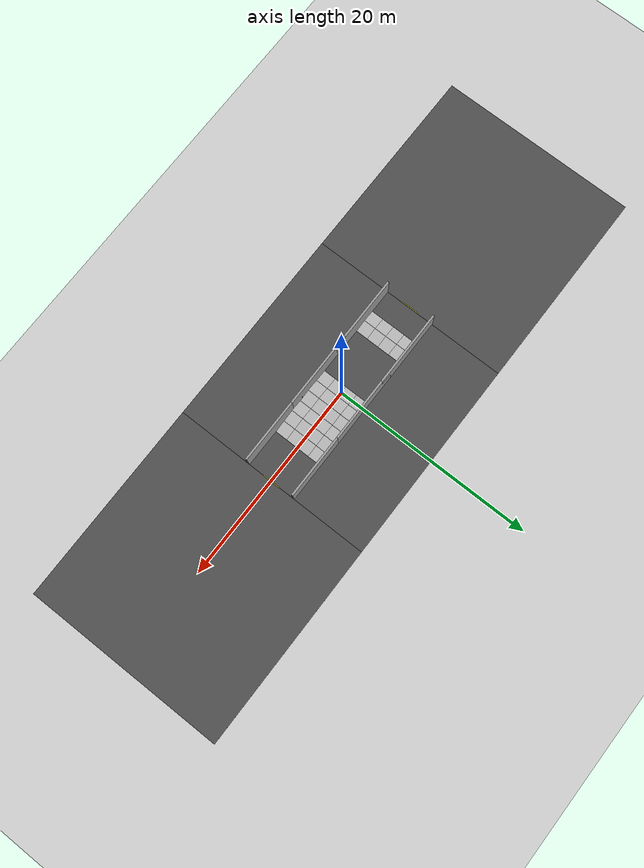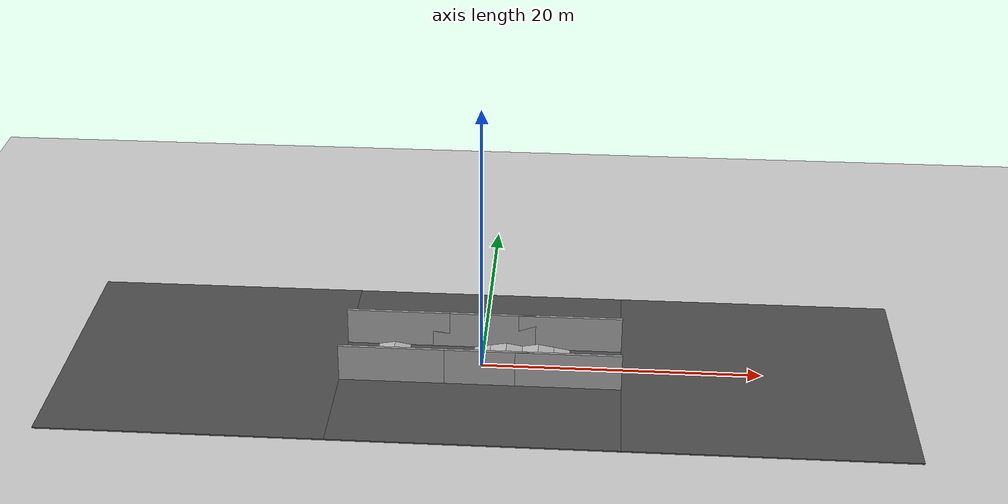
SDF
<sdf version="1.6">
 <world name="default">
  <light name="sun" type="directional">
   <pose>0 0 10 0 -0 0</pose>
   <diffuse>0.8 0.8 0.8 1</diffuse>
   <specular>0.1 0.1 0.1 1</specular>
   <attenuation>
    <range>1000</range>
    <constant>0.9</constant>
    <linear>0.01</linear>
    <quadratic>0.001</quadratic>
   </attenuation>
   <direction>-0.5 0.5 -1</direction>
  </light>
  <model name="ground_plane">
   <static>1</static>
   <link name="link">
    <collision name="collision">
     <geometry><plane><normal>0 0 1</normal><size>100 100</size></plane></geometry>
     <surface><friction><ode><mu>100</mu><mu2>50</mu2></ode></friction></surface>
    </collision>
    <visual name="visual">
     <cast_shadows>0</cast_shadows>
     <geometry><plane><normal>0 0 1</normal><size>100 100</size></plane></geometry>
     <material>
      <script><uri>file://media/materials/scripts/gazebo.material</uri><name>Gazebo/Grey</name></script>
     </material>
    </visual>
   </link>
  </model>
  <gravity>0 0 -9.8</gravity>
  <magnetic_field>6e-06 2.3e-05 -4.2e-05</magnetic_field>
  <atmosphere type="adiabatic"/>
  <physics name="default_physics" default="0" type="ode">
   <max_step_size>0.001</max_step_size>
   <real_time_factor>1</real_time_factor>
   <real_time_update_rate>1000</real_time_update_rate>
  </physics>
  <scene><ambient>0.4 0.4 0.4 1</ambient><background>0.7 0.7 0.7 1</background><shadows>1</shadows></scene>
  <spherical_coordinates>
   <surface_model>EARTH_WGS84</surface_model>
   <latitude_deg>0</latitude_deg>
   <longitude_deg>0</longitude_deg>
   <elevation>0</elevation>
   <heading_deg>0</heading_deg>
  </spherical_coordinates>
  <model name="asphalt_plane">
   <static>1</static>
   <link name="link">
    <collision name="collision"><geometry><box><size>20 20 0.1</size></box></geometry></collision>
    <visual name="visual">
     <cast_shadows>0</cast_shadows>
     <geometry><box><size>20 20 0.1</size></box></geometry>
     <material>
      <script>
       <uri>model://asphalt_plane/materials/scripts</uri>
       <uri>model://asphalt_plane/materials/textures</uri>
       <name>vrc/asphalt</name>
      </script>
     </material>
    </visual>
   </link>
  </model>
  <model name="grey_wall">
   <static>1</static>
   <link name="link">
    <pose>0 0 1.4 0 -0 0</pose>
    <collision name="collision"><geometry><box><size>7.5 0.2 2.8</size></box></geometry></collision>
    <visual name="visual">
     <cast_shadows>0</cast_shadows>
     <geometry><box><size>7.5 0.2 2.8</size></box></geometry>
     <material>
      <script>
       <uri>model://grey_wall/materials/scripts</uri>
       <uri>model://grey_wall/materials/textures</uri>
       <name>vrc/grey_wall</name>
      </script>
     </material>
    </visual>
   </link>
   <pose>-6.25 2.5 0 0 -0 0</pose>
  </model>
  <model name="grey_wall_clone">
   <static>1</static>
   <link name="link">
    <pose>0 0 1.4 0 -0 0</pose>
    <collision name="collision"><geometry><box><size>7.5 0.2 2.8</size></box></geometry></collision>
    <visual name="visual">
     <cast_shadows>0</cast_shadows>
     <geometry><box><size>7.5 0.2 2.8</size></box></geometry>
     <material>
      <script>
       <uri>model://grey_wall/materials/scripts</uri>
       <uri>model://grey_wall/materials/textures</uri>
       <name>vrc/grey_wall</name>
      </script>
     </material>
    </visual>
   </link>
   <pose>0 2.5 0 0 -0 0</pose>
  </model>
  <model name="grey_wall_clone_0">
   <static>1</static>
   <link name="link">
    <pose>0 0 1.4 0 -0 0</pose>
    <collision name="collision"><geometry><box><size>7.5 0.2 2.8</size></box></geometry></collision>
    <visual name="visual">
     <cast_shadows>0</cast_shadows>
     <geometry><box><size>7.5 0.2 2.8</size></box></geometry>
     <material>
      <script>
       <uri>model://grey_wall/materials/scripts</uri>
       <uri>model://grey_wall/materials/textures</uri>
       <name>vrc/grey_wall</name>
      </script>
     </material>
    </visual>
   </link>
   <pose>-6.25 -2.5 0 0 -0 0</pose>
  </model>
  <model name="grey_wall_clone_1">
   <static>1</static>
   <link name="link">
    <pose>0 0 1.4 0 -0 0</pose>
    <collision name="collision"><geometry><box><size>7.5 0.2 2.8</size></box></geometry></collision>
    <visual name="visual">
     <cast_shadows>0</cast_shadows>
     <geometry><box><size>7.5 0.2 2.8</size></box></geometry>
     <material>
      <script>
       <uri>model://grey_wall/materials/scripts</uri>
       <uri>model://grey_wall/materials/textures</uri>
       <name>vrc/grey_wall</name>
      </script>
     </material>
    </visual>
   </link>
   <pose>6.25 2.5 0 0 -0 0</pose>
  </model>
  <model name="grey_wall_clone_2">
   <static>1</static>
   <link name="link">
    <pose>0 0 1.4 0 -0 0</pose>
    <collision name="collision"><geometry><box><size>7.5 0.2 2.8</size></box></geometry></collision>
    <visual name="visual">
     <cast_shadows>0</cast_shadows>
     <geometry><box><size>7.5 0.2 2.8</size></box></geometry>
     <material>
      <script>
       <uri>model://grey_wall/materials/scripts</uri>
       <uri>model://grey_wall/materials/textures</uri>
       <name>vrc/grey_wall</name>
      </script>
     </material>
    </visual>
   </link>
   <pose>0 -2.5 0 0 -0 0</pose>
  </model>
  <model name="grey_wall_clone_3">
   <static>1</static>
   <link name="link">
    <pose>0 0 1.4 0 -0 0</pose>
    <collision name="collision"><geometry><box><size>7.5 0.2 2.8</size></box></geometry></collision>
    <visual name="visual">
     <cast_shadows>0</cast_shadows>
     <geometry><box><size>7.5 0.2 2.8</size></box></geometry>
     <material>
      <script>
       <uri>model://grey_wall/materials/scripts</uri>
       <uri>model://grey_wall/materials/textures</uri>
       <name>vrc/grey_wall</name>
      </script>
     </material>
    </visual>
   </link>
   <pose>6.25 -2.5 0 0 -0 0</pose>
  </model>
  <model name="asphalt_plane_clone">
   <static>1</static>
   <link name="link">
    <collision name="collision"><geometry><box><size>20 20 0.1</size></box></geometry></collision>
    <visual name="visual">
     <cast_shadows>0</cast_shadows>
     <geometry><box><size>20 20 0.1</size></box></geometry>
     <material>
      <script>
       <uri>model://asphalt_plane/materials/scripts</uri>
       <uri>model://asphalt_plane/materials/textures</uri>
       <name>vrc/asphalt</name>
      </script>
     </material>
    </visual>
   </link>
   <pose>-20 0 0 0 -0 0</pose>
  </model>
  <model name="asphalt_plane_clone_0">
   <static>1</static>
   <link name="link">
    <collision name="collision"><geometry><box><size>20 20 0.1</size></box></geometry></collision>
    <visual name="visual">
     <cast_shadows>0</cast_shadows>
     <geometry><box><size>20 20 0.1</size></box></geometry>
     <material>
      <script>
       <uri>model://asphalt_plane/materials/scripts</uri>
       <uri>model://asphalt_plane/materials/textures</uri>
       <name>vrc/asphalt</name>
      </script>
     </material>
    </visual>
   </link>
   <pose>20 0 0 0 -0 0</pose>
  </model>
  <model name="drc_practice_yellow_parking_block">
   <static>1</static>
   <link name="link">
    <visual name="visual">
     <geometry>
      <mesh><uri>model://drc_practice_yellow_parking_block/meshes/block.dae</uri><scale>1 1 1</scale></mesh>
     </geometry>
    </visual>
    <collision name="collision">
     <geometry>
      <mesh><uri>model://drc_practice_yellow_parking_block/meshes/block.dae</uri><scale>1 1 1</scale></mesh>
     </geometry>
    </collision>
   </link>
   <pose>-10.0634 0.022013 -0.051452 0 -0 0</pose>
  </model>
  <model name="drc_practice_yellow_parking_block_clone">
   <static>1</static>
   <link name="link">
    <visual name="visual">
     <geometry>
      <mesh><uri>model://drc_practice_yellow_parking_block/meshes/block.dae</uri><scale>1 1 1</scale></mesh>
     </geometry>
    </visual>
    <collision name="collision">
     <geometry>
      <mesh><uri>model://drc_practice_yellow_parking_block/meshes/block.dae</uri><scale>1 1 1</scale></mesh>
     </geometry>
    </collision>
   </link>
   <pose>10 0.079134 -0.051452 0 -0 0</pose>
  </model>
  <model name="nist_maze_wall_120">
   <static>1</static>
   <link name="nist_maze_wall_120_link">
    <collision name="collision">
     <geometry>
      <mesh><uri>model://nist_maze_wall_120/meshes/nist_maze_wall_120.dae</uri><scale>1 1 1</scale></mesh>
     </geometry>
    </collision>
    <visual name="visual">
     <geometry>
      <mesh><uri>model://nist_maze_wall_120/meshes/nist_maze_wall_120.dae</uri><scale>1 1 1</scale></mesh>
     </geometry>
    </visual>
   </link>
   <pose>-7 0 -0.44 1.5708 -0.174533 1e-06</pose>
  </model>
  <model name="nist_maze_wall_120_clone">
   <static>1</static>
   <link name="nist_maze_wall_120_link">
    <collision name="collision">
     <geometry>
      <mesh><uri>model://nist_maze_wall_120/meshes/nist_maze_wall_120.dae</uri><scale>1 1 1</scale></mesh>
     </geometry>
    </collision>
    <visual name="visual">
     <geometry>
      <mesh><uri>model://nist_maze_wall_120/meshes/nist_maze_wall_120.dae</uri><scale>1 1 1</scale></mesh>
     </geometry>
    </visual>
   </link>
   <pose>-7 1.2 -0.44 1.5708 -0.174533 1e-06</pose>
  </model>
  <model name="nist_maze_wall_120_clone_0">
   <static>1</static>
   <link name="nist_maze_wall_120_link">
    <collision name="collision">
     <geometry>
      <mesh><uri>model://nist_maze_wall_120/meshes/nist_maze_wall_120.dae</uri><scale>1 1 1</scale></mesh>
     </geometry>
    </collision>
    <visual name="visual">
     <geometry>
      <mesh><uri>model://nist_maze_wall_120/meshes/nist_maze_wall_120.dae</uri><scale>1 1 1</scale></mesh>
     </geometry>
    </visual>
   </link>
   <pose>-7 2.4 -0.44 1.5708 -0.174533 1e-06</pose>
  </model>
  <model name="nist_maze_wall_120_clone_1">
   <static>1</static>
   <link name="nist_maze_wall_120_link">
    <collision name="collision">
     <geometry>
      <mesh><uri>model://nist_maze_wall_120/meshes/nist_maze_wall_120.dae</uri><scale>1 1 1</scale></mesh>
     </geometry>
    </collision>
    <visual name="visual">
     <geometry>
      <mesh><uri>model://nist_maze_wall_120/meshes/nist_maze_wall_120.dae</uri><scale>1 1 1</scale></mesh>
     </geometry>
    </visual>
   </link>
   <pose>-7 -1.2 -0.44 1.5708 -0.174533 1e-06</pose>
  </model>
  <model name="nist_maze_wall_120_clone_1_clone">
   <static>1</static>
   <link name="nist_maze_wall_120_link">
    <collision name="collision">
     <geometry>
      <mesh><uri>model://nist_maze_wall_120/meshes/nist_maze_wall_120.dae</uri><scale>1 1 1</scale></mesh>
     </geometry>
    </collision>
    <visual name="visual">
     <geometry>
      <mesh><uri>model://nist_maze_wall_120/meshes/nist_maze_wall_120.dae</uri><scale>1 1 1</scale></mesh>
     </geometry>
    </visual>
   </link>
   <pose>-6.05 1.2 -0.44 1.5708 -0.174533 3.14159</pose>
  </model>
  <model name="nist_maze_wall_120_clone_1_clone_clone">
   <static>1</static>
   <link name="nist_maze_wall_120_link">
    <collision name="collision">
     <geometry>
      <mesh><uri>model://nist_maze_wall_120/meshes/nist_maze_wall_120.dae</uri><scale>1 1 1</scale></mesh>
     </geometry>
    </collision>
    <visual name="visual">
     <geometry>
      <mesh><uri>model://nist_maze_wall_120/meshes/nist_maze_wall_120.dae</uri><scale>1 1 1</scale></mesh>
     </geometry>
    </visual>
   </link>
   <pose>-6.04 0 -0.44 1.5708 -0.174533 3.14159</pose>
  </model>
  <model name="nist_maze_wall_120_clone_1_clone_clone_0">
   <static>1</static>
   <link name="nist_maze_wall_120_link">
    <collision name="collision">
     <geometry>
      <mesh><uri>model://nist_maze_wall_120/meshes/nist_maze_wall_120.dae</uri><scale>1 1 1</scale></mesh>
     </geometry>
    </collision>
    <visual name="visual">
     <geometry>
      <mesh><uri>model://nist_maze_wall_120/meshes/nist_maze_wall_120.dae</uri><scale>1 1 1</scale></mesh>
     </geometry>
    </visual>
   </link>
   <pose>-6.04 -1.2 -0.44 1.5708 -0.174533 3.14159</pose>
  </model>
  <model name="nist_maze_wall_120_clone_1_clone_clone_1">
   <static>1</static>
   <link name="nist_maze_wall_120_link">
    <collision name="collision">
     <geometry>
      <mesh><uri>model://nist_maze_wall_120/meshes/nist_maze_wall_120.dae</uri><scale>1 1 1</scale></mesh>
     </geometry>
    </collision>
    <visual name="visual">
     <geometry>
      <mesh><uri>model://nist_maze_wall_120/meshes/nist_maze_wall_120.dae</uri><scale>1 1 1</scale></mesh>
     </geometry>
    </visual>
   </link>
   <pose>-6.04 -2.4 -0.44 1.5708 -0.174533 3.14159</pose>
  </model>
  <model name="nist_maze_wall_120_clone_clone">
   <static>1</static>
   <link name="nist_maze_wall_120_link">
    <collision name="collision">
     <geometry>
      <mesh><uri>model://nist_maze_wall_120/meshes/nist_maze_wall_120.dae</uri><scale>1 1 1</scale></mesh>
     </geometry>
    </collision>
    <visual name="visual">
     <geometry>
      <mesh><uri>model://nist_maze_wall_120/meshes/nist_maze_wall_120.dae</uri><scale>1 1 1</scale></mesh>
     </geometry>
    </visual>
   </link>
   <pose>0 1.2 -0.44 1.5708 -0.174533 1e-06</pose>
  </model>
  <model name="nist_maze_wall_120_clone_clone_0">
   <static>1</static>
   <link name="nist_maze_wall_120_link">
    <collision name="collision">
     <geometry>
      <mesh><uri>model://nist_maze_wall_120/meshes/nist_maze_wall_120.dae</uri><scale>1 1 1</scale></mesh>
     </geometry>
    </collision>
    <visual name="visual">
     <geometry>
      <mesh><uri>model://nist_maze_wall_120/meshes/nist_maze_wall_120.dae</uri><scale>1 1 1</scale></mesh>
     </geometry>
    </visual>
   </link>
   <pose>1.17 1.2 -0.235 1.5708 -0.174533 1e-06</pose>
  </model>
  <model name="nist_maze_wall_120_clone_clone_clone">
   <static>1</static>
   <link name="nist_maze_wall_120_link">
    <collision name="collision">
     <geometry>
      <mesh><uri>model://nist_maze_wall_120/meshes/nist_maze_wall_120.dae</uri><scale>1 1 1</scale></mesh>
     </geometry>
    </collision>
    <visual name="visual">
     <geometry>
      <mesh><uri>model://nist_maze_wall_120/meshes/nist_maze_wall_120.dae</uri><scale>1 1 1</scale></mesh>
     </geometry>
    </visual>
   </link>
   <pose>0 0 -0.44 1.5708 -0.174533 1e-06</pose>
  </model>
  <model name="nist_maze_wall_120_clone_clone_0_clone">
   <static>1</static>
   <link name="nist_maze_wall_120_link">
    <collision name="collision">
     <geometry>
      <mesh><uri>model://nist_maze_wall_120/meshes/nist_maze_wall_120.dae</uri><scale>1 1 1</scale></mesh>
     </geometry>
    </collision>
    <visual name="visual">
     <geometry>
      <mesh><uri>model://nist_maze_wall_120/meshes/nist_maze_wall_120.dae</uri><scale>1 1 1</scale></mesh>
     </geometry>
    </visual>
   </link>
   <pose>1.17 0 -0.235 1.5708 -0.174533 1e-06</pose>
  </model>
  <model name="nist_maze_wall_120_clone_clone_0_clone_0">
   <static>1</static>
   <link name="nist_maze_wall_120_link">
    <collision name="collision">
     <geometry>
      <mesh><uri>model://nist_maze_wall_120/meshes/nist_maze_wall_120.dae</uri><scale>1 1 1</scale></mesh>
     </geometry>
    </collision>
    <visual name="visual">
     <geometry>
      <mesh><uri>model://nist_maze_wall_120/meshes/nist_maze_wall_120.dae</uri><scale>1 1 1</scale></mesh>
     </geometry>
    </visual>
   </link>
   <pose>1.17 -1.2 -0.235 1.5708 -0.174533 1e-06</pose>
  </model>
  <model name="nist_maze_wall_120_clone_clone_0_clone_1">
   <static>1</static>
   <link name="nist_maze_wall_120_link">
    <collision name="collision">
     <geometry>
      <mesh><uri>model://nist_maze_wall_120/meshes/nist_maze_wall_120.dae</uri><scale>1 1 1</scale></mesh>
     </geometry>
    </collision>
    <visual name="visual">
     <geometry>
      <mesh><uri>model://nist_maze_wall_120/meshes/nist_maze_wall_120.dae</uri><scale>1 1 1</scale></mesh>
     </geometry>
    </visual>
   </link>
   <pose>1.17 2.4 -0.235 1.5708 -0.174533 1e-06</pose>
  </model>
  <model name="nist_maze_wall_120_clone_clone_clone_0">
   <static>1</static>
   <link name="nist_maze_wall_120_link">
    <collision name="collision">
     <geometry>
      <mesh><uri>model://nist_maze_wall_120/meshes/nist_maze_wall_120.dae</uri><scale>1 1 1</scale></mesh>
     </geometry>
    </collision>
    <visual name="visual">
     <geometry>
      <mesh><uri>model://nist_maze_wall_120/meshes/nist_maze_wall_120.dae</uri><scale>1 1 1</scale></mesh>
     </geometry>
    </visual>
   </link>
   <pose>0 2.4 -0.44 1.5708 -0.174533 1e-06</pose>
  </model>
  <model name="nist_maze_wall_120_clone_clone_clone_1">
   <static>1</static>
   <link name="nist_maze_wall_120_link">
    <collision name="collision">
     <geometry>
      <mesh><uri>model://nist_maze_wall_120/meshes/nist_maze_wall_120.dae</uri><scale>1 1 1</scale></mesh>
     </geometry>
    </collision>
    <visual name="visual">
     <geometry>
      <mesh><uri>model://nist_maze_wall_120/meshes/nist_maze_wall_120.dae</uri><scale>1 1 1</scale></mesh>
     </geometry>
    </visual>
   </link>
   <pose>0 -1.2 -0.44 1.5708 -0.174533 1e-06</pose>
  </model>
  <model name="nist_maze_wall_120_clone_clone_0_clone_clone">
   <static>1</static>
   <link name="nist_maze_wall_120_link">
    <collision name="collision">
     <geometry>
      <mesh><uri>model://nist_maze_wall_120/meshes/nist_maze_wall_120.dae</uri><scale>1 1 1</scale></mesh>
     </geometry>
    </collision>
    <visual name="visual">
     <geometry>
      <mesh><uri>model://nist_maze_wall_120/meshes/nist_maze_wall_120.dae</uri><scale>1 1 1</scale></mesh>
     </geometry>
    </visual>
   </link>
   <pose>2.125 0 -0.235 1.5708 -0.174533 3.14159</pose>
  </model>
  <model name="nist_maze_wall_120_clone_clone_0_clone_clone_clone">
   <static>1</static>
   <link name="nist_maze_wall_120_link">
    <collision name="collision">
     <geometry>
      <mesh><uri>model://nist_maze_wall_120/meshes/nist_maze_wall_120.dae</uri><scale>1 1 1</scale></mesh>
     </geometry>
    </collision>
    <visual name="visual">
     <geometry>
      <mesh><uri>model://nist_maze_wall_120/meshes/nist_maze_wall_120.dae</uri><scale>1 1 1</scale></mesh>
     </geometry>
    </visual>
   </link>
   <pose>2.11983 1.20314 -0.235 1.5708 -0.174533 3.14159</pose>
  </model>
  <model name="nist_maze_wall_120_clone_clone_0_clone_clone_clone_0">
   <static>1</static>
   <link name="nist_maze_wall_120_link">
    <collision name="collision">
     <geometry>
      <mesh><uri>model://nist_maze_wall_120/meshes/nist_maze_wall_120.dae</uri><scale>1 1 1</scale></mesh>
     </geometry>
    </collision>
    <visual name="visual">
     <geometry>
      <mesh><uri>model://nist_maze_wall_120/meshes/nist_maze_wall_120.dae</uri><scale>1 1 1</scale></mesh>
     </geometry>
    </visual>
   </link>
   <pose>2.13497 -1.205 -0.235 1.5708 -0.174533 3.14159</pose>
  </model>
  <model name="nist_maze_wall_120_clone_clone_0_clone_clone_clone_1">
   <static>1</static>
   <link name="nist_maze_wall_120_link">
    <collision name="collision">
     <geometry>
      <mesh><uri>model://nist_maze_wall_120/meshes/nist_maze_wall_120.dae</uri><scale>1 1 1</scale></mesh>
     </geometry>
    </collision>
    <visual name="visual">
     <geometry>
      <mesh><uri>model://nist_maze_wall_120/meshes/nist_maze_wall_120.dae</uri><scale>1 1 1</scale></mesh>
     </geometry>
    </visual>
   </link>
   <pose>2.1369 -2.3946 -0.235 1.5708 -0.174533 3.14159</pose>
  </model>
  <model name="nist_maze_wall_120_clone_clone_0_clone_clone_0">
   <static>1</static>
   <link name="nist_maze_wall_120_link">
    <collision name="collision">
     <geometry>
      <mesh><uri>model://nist_maze_wall_120/meshes/nist_maze_wall_120.dae</uri><scale>1 1 1</scale></mesh>
     </geometry>
    </collision>
    <visual name="visual">
     <geometry>
      <mesh><uri>model://nist_maze_wall_120/meshes/nist_maze_wall_120.dae</uri><scale>1 1 1</scale></mesh>
     </geometry>
    </visual>
   </link>
   <pose>3.5 -1.2 -0.235 1.5708 -0.174533 1e-06</pose>
  </model>
  <model name="nist_maze_wall_120_clone_clone_0_clone_clone_1">
   <static>1</static>
   <link name="nist_maze_wall_120_link">
    <collision name="collision">
     <geometry>
      <mesh><uri>model://nist_maze_wall_120/meshes/nist_maze_wall_120.dae</uri><scale>1 1 1</scale></mesh>
     </geometry>
    </collision>
    <visual name="visual">
     <geometry>
      <mesh><uri>model://nist_maze_wall_120/meshes/nist_maze_wall_120.dae</uri><scale>1 1 1</scale></mesh>
     </geometry>
    </visual>
   </link>
   <pose>3.5 0 -0.235 1.5708 -0.174533 1e-06</pose>
  </model>
  <model name="nist_maze_wall_120_clone_clone_0_clone_clone_2">
   <static>1</static>
   <link name="nist_maze_wall_120_link">
    <collision name="collision">
     <geometry>
      <mesh><uri>model://nist_maze_wall_120/meshes/nist_maze_wall_120.dae</uri><scale>1 1 1</scale></mesh>
     </geometry>
    </collision>
    <visual name="visual">
     <geometry>
      <mesh><uri>model://nist_maze_wall_120/meshes/nist_maze_wall_120.dae</uri><scale>1 1 1</scale></mesh>
     </geometry>
    </visual>
   </link>
   <pose>3.5 1.2 -0.235 1.5708 -0.174533 1e-06</pose>
  </model>
  <model name="nist_maze_wall_120_clone_clone_0_clone_clone_3">
   <static>1</static>
   <link name="nist_maze_wall_120_link">
    <collision name="collision">
     <geometry>
      <mesh><uri>model://nist_maze_wall_120/meshes/nist_maze_wall_120.dae</uri><scale>1 1 1</scale></mesh>
     </geometry>
    </collision>
    <visual name="visual">
     <geometry>
      <mesh><uri>model://nist_maze_wall_120/meshes/nist_maze_wall_120.dae</uri><scale>1 1 1</scale></mesh>
     </geometry>
    </visual>
   </link>
   <pose>3.5 2.4 -0.235 1.5708 -0.174533 1e-06</pose>
  </model>
  <model name="nist_maze_wall_120_clone_clone_0_clone_clone_clone_2">
   <static>1</static>
   <link name="nist_maze_wall_120_link">
    <collision name="collision">
     <geometry>
      <mesh><uri>model://nist_maze_wall_120/meshes/nist_maze_wall_120.dae</uri><scale>1 1 1</scale></mesh>
     </geometry>
    </collision>
    <visual name="visual">
     <geometry>
      <mesh><uri>model://nist_maze_wall_120/meshes/nist_maze_wall_120.dae</uri><scale>1 1 1</scale></mesh>
     </geometry>
    </visual>
   </link>
   <pose>4.45 1.2 -0.235 1.5708 -0.174533 3.14159</pose>
  </model>
  <model name="nist_maze_wall_120_clone_clone_0_clone_clone_clone_3">
   <static>1</static>
   <link name="nist_maze_wall_120_link">
    <collision name="collision">
     <geometry>
      <mesh><uri>model://nist_maze_wall_120/meshes/nist_maze_wall_120.dae</uri><scale>1 1 1</scale></mesh>
     </geometry>
    </collision>
    <visual name="visual">
     <geometry>
      <mesh><uri>model://nist_maze_wall_120/meshes/nist_maze_wall_120.dae</uri><scale>1 1 1</scale></mesh>
     </geometry>
    </visual>
   </link>
   <pose>4.45 0 -0.235 1.5708 -0.174533 3.14159</pose>
  </model>
  <model name="nist_maze_wall_120_clone_clone_0_clone_clone_clone_4">
   <static>1</static>
   <link name="nist_maze_wall_120_link">
    <collision name="collision">
     <geometry>
      <mesh><uri>model://nist_maze_wall_120/meshes/nist_maze_wall_120.dae</uri><scale>1 1 1</scale></mesh>
     </geometry>
    </collision>
    <visual name="visual">
     <geometry>
      <mesh><uri>model://nist_maze_wall_120/meshes/nist_maze_wall_120.dae</uri><scale>1 1 1</scale></mesh>
     </geometry>
    </visual>
   </link>
   <pose>4.45 -1.2 -0.235 1.5708 -0.174533 3.14159</pose>
  </model>
  <model name="nist_maze_wall_120_clone_clone_0_clone_clone_clone_5">
   <static>1</static>
   <link name="nist_maze_wall_120_link">
    <collision name="collision">
     <geometry>
      <mesh><uri>model://nist_maze_wall_120/meshes/nist_maze_wall_120.dae</uri><scale>1 1 1</scale></mesh>
     </geometry>
    </collision>
    <visual name="visual">
     <geometry>
      <mesh><uri>model://nist_maze_wall_120/meshes/nist_maze_wall_120.dae</uri><scale>1 1 1</scale></mesh>
     </geometry>
    </visual>
   </link>
   <pose>4.45 -2.4 -0.235 1.5708 -0.174533 3.14159</pose>
  </model>
  <model name="nist_maze_wall_120_clone_clone_0_clone_clone_clone_6">
   <static>1</static>
   <link name="nist_maze_wall_120_link">
    <collision name="collision">
     <geometry>
      <mesh><uri>model://nist_maze_wall_120/meshes/nist_maze_wall_120.dae</uri><scale>1 1 1</scale></mesh>
     </geometry>
    </collision>
    <visual name="visual">
     <geometry>
      <mesh><uri>model://nist_maze_wall_120/meshes/nist_maze_wall_120.dae</uri><scale>1 1 1</scale></mesh>
     </geometry>
    </visual>
   </link>
   <pose>5.6 -2.4 -0.4375 1.5708 -0.174533 3.14159</pose>
  </model>
  <model name="nist_maze_wall_120_clone_clone_0_clone_clone_clone_7">
   <static>1</static>
   <link name="nist_maze_wall_120_link">
    <collision name="collision">
     <geometry>
      <mesh><uri>model://nist_maze_wall_120/meshes/nist_maze_wall_120.dae</uri><scale>1 1 1</scale></mesh>
     </geometry>
    </collision>
    <visual name="visual">
     <geometry>
      <mesh><uri>model://nist_maze_wall_120/meshes/nist_maze_wall_120.dae</uri><scale>1 1 1</scale></mesh>
     </geometry>
    </visual>
   </link>
   <pose>5.6 -1.2 -0.4375 1.5708 -0.174533 3.14159</pose>
  </model>
  <model name="nist_maze_wall_120_clone_clone_0_clone_clone_clone_8">
   <static>1</static>
   <link name="nist_maze_wall_120_link">
    <collision name="collision">
     <geometry>
      <mesh><uri>model://nist_maze_wall_120/meshes/nist_maze_wall_120.dae</uri><scale>1 1 1</scale></mesh>
     </geometry>
    </collision>
    <visual name="visual">
     <geometry>
      <mesh><uri>model://nist_maze_wall_120/meshes/nist_maze_wall_120.dae</uri><scale>1 1 1</scale></mesh>
     </geometry>
    </visual>
   </link>
   <pose>5.6 0 -0.4375 1.5708 -0.174533 3.14159</pose>
  </model>
  <model name="nist_maze_wall_120_clone_clone_0_clone_clone_clone_9">
   <static>1</static>
   <link name="nist_maze_wall_120_link">
    <collision name="collision">
     <geometry>
      <mesh><uri>model://nist_maze_wall_120/meshes/nist_maze_wall_120.dae</uri><scale>1 1 1</scale></mesh>
     </geometry>
    </collision>
    <visual name="visual">
     <geometry>
      <mesh><uri>model://nist_maze_wall_120/meshes/nist_maze_wall_120.dae</uri><scale>1 1 1</scale></mesh>
     </geometry>
    </visual>
   </link>
   <pose>5.6 1.2 -0.4375 1.5708 -0.174533 3.14159</pose>
  </model>
 </world>
</sdf>
